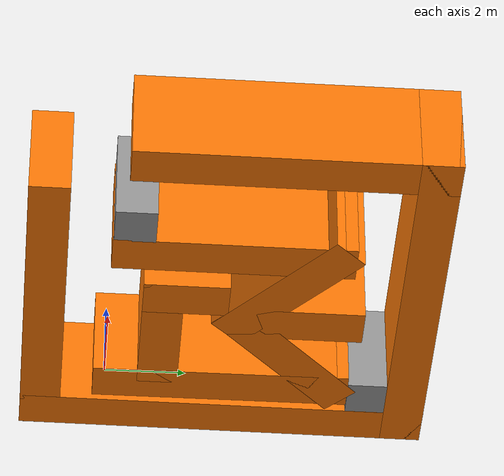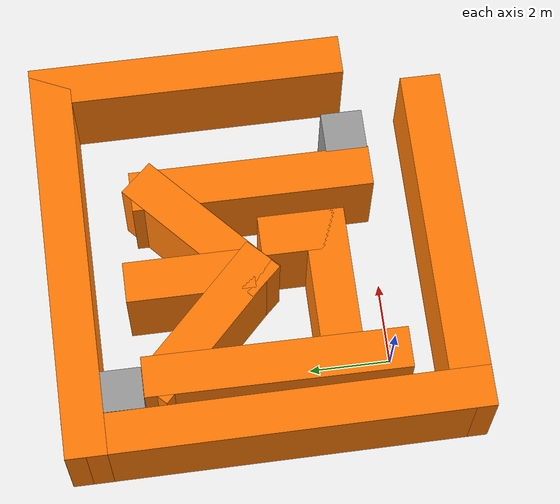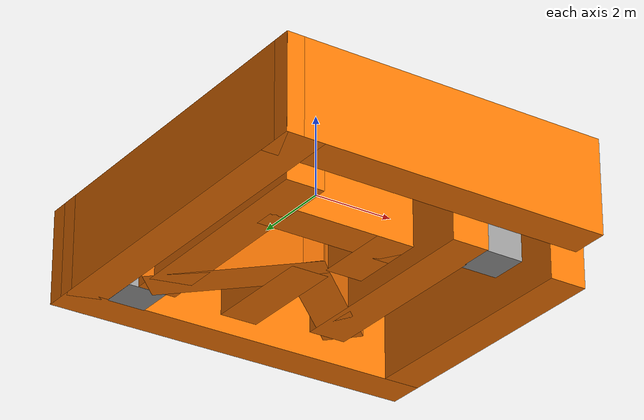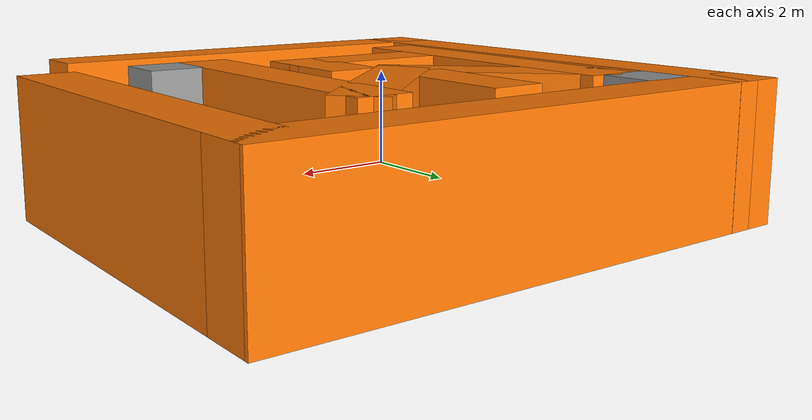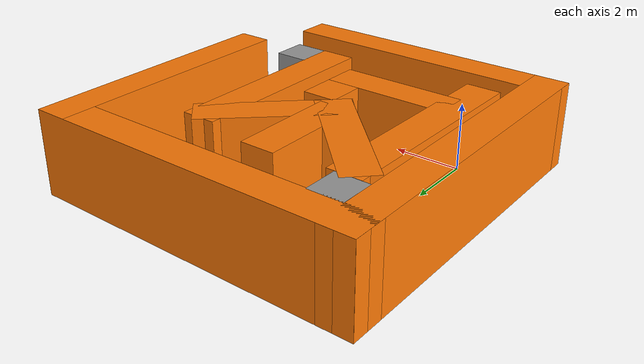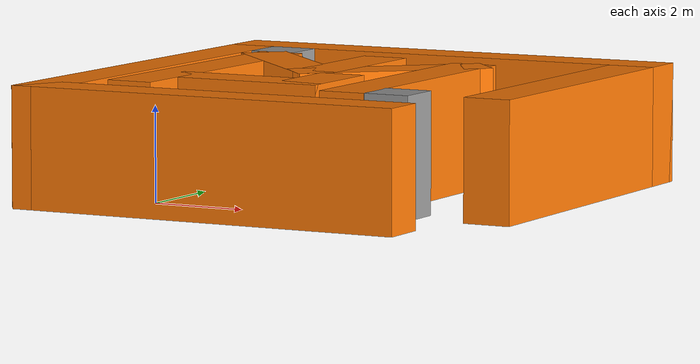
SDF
<?xml version='1.0'?>
<sdf version='1.7'>
  <model name='my'>
    <pose>2.82275 2.998 0 0 -0 0</pose>
    <link name='Wall_0'>
      <collision name='Wall_0_Collision'>
        <geometry>
          <box>
            <size>10.1156 1 2.5</size>
          </box>
        </geometry>
        <pose>0 0 1.25 0 -0 0</pose>
      </collision>
      <visual name='Wall_0_Visual'>
        <pose>0 0 1.25 0 -0 0</pose>
        <geometry>
          <box>
            <size>10.1156 1 2.5</size>
          </box>
        </geometry>
        <material>
          <script>
            <uri>file://media/materials/scripts/gazebo.material</uri>
            <name>Gazebo/Grey</name>
          </script>
          <ambient>0.996078 0.47451 0.0196078 1</ambient>
        </material>
        <meta>
          <layer>0</layer>
        </meta>
      </visual>
      <pose>-4.47575 0 0 0 -0 1.57584</pose>
    </link>
    <link name='Wall_1'>
      <collision name='Wall_1_Collision'>
        <geometry>
          <box>
            <size>10 1 2.5</size>
          </box>
        </geometry>
        <pose>0 0 1.25 0 -0 0</pose>
      </collision>
      <visual name='Wall_1_Visual'>
        <pose>0 0 1.25 0 -0 0</pose>
        <geometry>
          <box>
            <size>10 1 2.5</size>
          </box>
        </geometry>
        <material>
          <script>
            <uri>file://media/materials/scripts/gazebo.material</uri>
            <name>Gazebo/Grey</name>
          </script>
          <ambient>0.996078 0.47451 0.0196078 1</ambient>
        </material>
        <meta>
          <layer>0</layer>
        </meta>
      </visual>
      <pose>0.001248 4.558 0 0 -0 0</pose>
    </link>
    <link name='Wall_10'>
      <collision name='Wall_10_Collision'>
        <geometry>
          <box>
            <size>6.35035 1 2.5</size>
          </box>
        </geometry>
        <pose>0 0 1.25 0 -0 0</pose>
      </collision>
      <visual name='Wall_10_Visual'>
        <pose>0 0 1.25 0 -0 0</pose>
        <geometry>
          <box>
            <size>6.35035 1 2.5</size>
          </box>
        </geometry>
        <material>
          <script>
            <uri>file://media/materials/scripts/gazebo.material</uri>
            <name>Gazebo/Grey</name>
          </script>
          <ambient>0.996078 0.47451 0.0196078 1</ambient>
        </material>
        <meta>
          <layer>0</layer>
        </meta>
      </visual>
      <pose>-3.26325 -0.1 0 0 -0 1.56575</pose>
    </link>
    <link name='Wall_11'>
      <collision name='Wall_11_Collision'>
        <geometry>
          <box>
            <size>4.32982 1 2.5</size>
          </box>
        </geometry>
        <pose>0 0 1.25 0 -0 0</pose>
      </collision>
      <visual name='Wall_11_Visual'>
        <pose>0 0 1.25 0 -0 0</pose>
        <geometry>
          <box>
            <size>4.32982 1 2.5</size>
          </box>
        </geometry>
        <material>
          <script>
            <uri>file://media/materials/scripts/gazebo.material</uri>
            <name>Gazebo/Grey</name>
          </script>
          <ambient>0.996078 0.47451 0.0196078 1</ambient>
        </material>
        <meta>
          <layer>0</layer>
        </meta>
      </visual>
      <pose>-2.06575 1.4045 0 0 -0 -0.779664</pose>
    </link>
    <link name='Wall_12'>
      <collision name='Wall_12_Collision'>
        <geometry>
          <box>
            <size>4.15926 1 2.5</size>
          </box>
        </geometry>
        <pose>0 0 1.25 0 -0 0</pose>
      </collision>
      <visual name='Wall_12_Visual'>
        <pose>0 0 1.25 0 -0 0</pose>
        <geometry>
          <box>
            <size>4.15926 1 2.5</size>
          </box>
        </geometry>
        <material>
          <script>
            <uri>file://media/materials/scripts/gazebo.material</uri>
            <name>Gazebo/Grey</name>
          </script>
          <ambient>0.996078 0.47451 0.0196078 1</ambient>
        </material>
        <meta>
          <layer>0</layer>
        </meta>
      </visual>
      <pose>0.280748 1.3035 0 0 -0 0.743756</pose>
    </link>
    <link name='Wall_13'>
      <collision name='Wall_13_Collision'>
        <geometry>
          <box>
            <size>5.877 1 2.5</size>
          </box>
        </geometry>
        <pose>0 0 1.25 0 -0 0</pose>
      </collision>
      <visual name='Wall_13_Visual'>
        <pose>0 0 1.25 0 -0 0</pose>
        <geometry>
          <box>
            <size>5.877 1 2.5</size>
          </box>
        </geometry>
        <material>
          <script>
            <uri>file://media/materials/scripts/gazebo.material</uri>
            <name>Gazebo/Grey</name>
          </script>
          <ambient>0.996078 0.47451 0.0196078 1</ambient>
        </material>
        <meta>
          <layer>0</layer>
        </meta>
      </visual>
      <pose>1.44325 -0.0655 0 0 -0 -1.5708</pose>
    </link>
    <link name='Wall_15'>
      <collision name='Wall_15_Collision'>
        <geometry>
          <box>
            <size>3.1 1 2.5</size>
          </box>
        </geometry>
        <pose>0 0 1.25 0 -0 0</pose>
      </collision>
      <visual name='Wall_15_Visual'>
        <pose>0 0 1.25 0 -0 0</pose>
        <geometry>
          <box>
            <size>3.1 1 2.5</size>
          </box>
        </geometry>
        <material>
          <script>
            <uri>file://media/materials/scripts/gazebo.material</uri>
            <name>Gazebo/Grey</name>
          </script>
          <ambient>0.996078 0.47451 0.0196078 1</ambient>
        </material>
        <meta>
          <layer>0</layer>
        </meta>
      </visual>
      <pose>-0.856152 1.7064 0 0 -0 1.5708</pose>
    </link>
    <link name='Wall_17'>
      <collision name='Wall_17_Collision'>
        <geometry>
          <box>
            <size>3.6 1 2.5</size>
          </box>
        </geometry>
        <pose>0 0 1.25 0 -0 0</pose>
      </collision>
      <visual name='Wall_17_Visual'>
        <pose>0 0 1.25 0 -0 0</pose>
        <geometry>
          <box>
            <size>3.6 1 2.5</size>
          </box>
        </geometry>
        <material>
          <script>
            <uri>file://media/materials/scripts/gazebo.material</uri>
            <name>Gazebo/Grey</name>
          </script>
          <ambient>0.996078 0.47451 0.0196078 1</ambient>
        </material>
        <meta>
          <layer>0</layer>
        </meta>
      </visual>
      <pose>-1.39175 -1.684 0 0 -0 0</pose>
    </link>
    <link name='Wall_18'>
      <collision name='Wall_18_Collision'>
        <geometry>
          <box>
            <size>2.09996 1 2.5</size>
          </box>
        </geometry>
        <pose>0 0 1.25 0 -0 0</pose>
      </collision>
      <visual name='Wall_18_Visual'>
        <pose>0 0 1.25 0 -0 0</pose>
        <geometry>
          <box>
            <size>2.09996 1 2.5</size>
          </box>
        </geometry>
        <material>
          <script>
            <uri>file://media/materials/scripts/gazebo.material</uri>
            <name>Gazebo/Grey</name>
          </script>
          <ambient>0.996078 0.47451 0.0196078 1</ambient>
        </material>
        <meta>
          <layer>0</layer>
        </meta>
      </visual>
      <pose>-0.091752 -1.134 0 0 -0 1.5708</pose>
    </link>
    <link name='Wall_2'>
      <collision name='Wall_2_Collision'>
        <geometry>
          <box>
            <size>7.75 1 2.5</size>
          </box>
        </geometry>
        <pose>0 0 1.25 0 -0 0</pose>
      </collision>
      <visual name='Wall_2_Visual'>
        <pose>0 0 1.25 0 -0 0</pose>
        <geometry>
          <box>
            <size>7.75 1 2.5</size>
          </box>
        </geometry>
        <material>
          <script>
            <uri>file://media/materials/scripts/gazebo.material</uri>
            <name>Gazebo/Grey</name>
          </script>
          <ambient>0.996078 0.47451 0.0196078 1</ambient>
        </material>
        <meta>
          <layer>0</layer>
        </meta>
      </visual>
      <pose>4.50112 1.18276 0 0 -0 -1.57083</pose>
    </link>
    <link name='Wall_4'>
      <collision name='Wall_4_Collision'>
        <geometry>
          <box>
            <size>8.6 1 2.5</size>
          </box>
        </geometry>
        <pose>0 0 1.25 0 -0 0</pose>
      </collision>
      <visual name='Wall_4_Visual'>
        <pose>0 0 1.25 0 -0 0</pose>
        <geometry>
          <box>
            <size>8.6 1 2.5</size>
          </box>
        </geometry>
        <material>
          <script>
            <uri>file://media/materials/scripts/gazebo.material</uri>
            <name>Gazebo/Grey</name>
          </script>
          <ambient>0.996078 0.47451 0.0196078 1</ambient>
        </material>
        <meta>
          <layer>0</layer>
        </meta>
      </visual>
      <pose>-0.652752 -4.558 0 0 -0 0</pose>
    </link>
    <link name='Wall_6'>
      <collision name='Wall_6_Collision'>
        <geometry>
          <box>
            <size>1.01 1 2.5</size>
          </box>
        </geometry>
        <pose>0 0 1.25 0 -0 0</pose>
      </collision>
      <visual name='Wall_6_Visual'>
        <pose>0 0 1.25 0 -0 0</pose>
        <geometry>
          <box>
            <size>1.01 1 2.5</size>
          </box>
        </geometry>
        <material>
          <script>
            <uri>file://media/materials/scripts/gazebo.material</uri>
            <name>Gazebo/Grey</name>
          </script>
          <ambient>1 1 1 1</ambient>
        </material>
        <meta>
          <layer>0</layer>
        </meta>
      </visual>
      <pose>-3.48998 3.58779 0 0 -0 1.5708</pose>
    </link>
    <link name='Wall_8'>
      <collision name='Wall_8_Collision'>
        <geometry>
          <box>
            <size>1.01 1 2.5</size>
          </box>
        </geometry>
        <pose>0 0 1.25 0 -0 0</pose>
      </collision>
      <visual name='Wall_8_Visual'>
        <pose>0 0 1.25 0 -0 0</pose>
        <geometry>
          <box>
            <size>1.01 1 2.5</size>
          </box>
        </geometry>
        <material>
          <script>
            <uri>file://media/materials/scripts/gazebo.material</uri>
            <name>Gazebo/Grey</name>
          </script>
          <ambient>0 0 0 1</ambient>
        </material>
        <meta>
          <layer>0</layer>
        </meta>
      </visual>
      <pose>2.41526 -2.47705 0 0 -0 1.5708</pose>
    </link>
    <static>1</static>
  </model>
</sdf>
